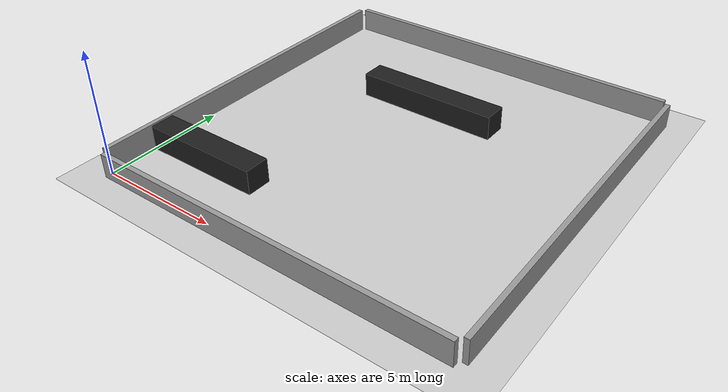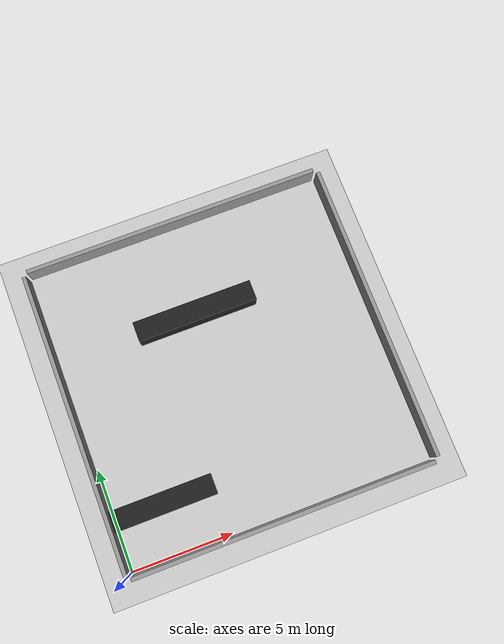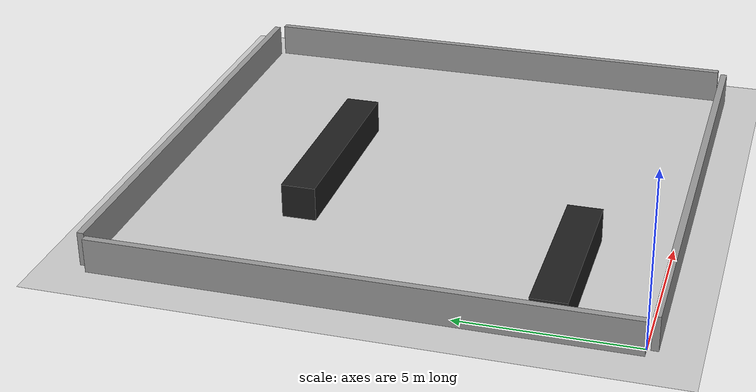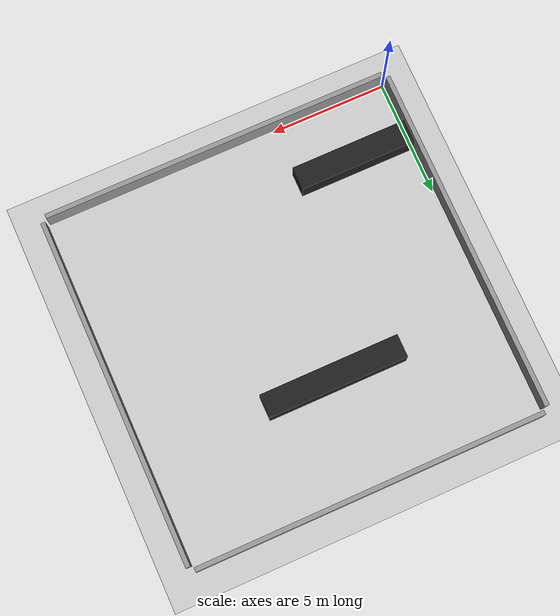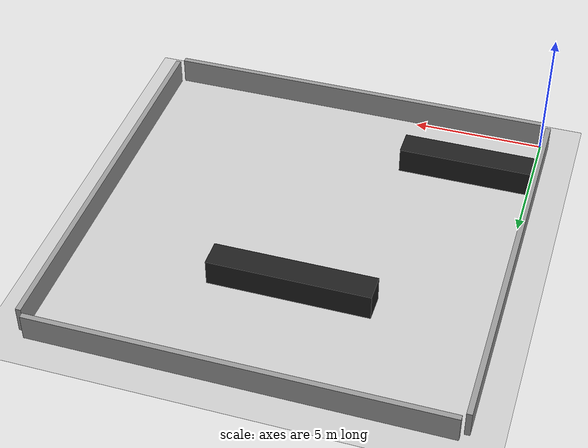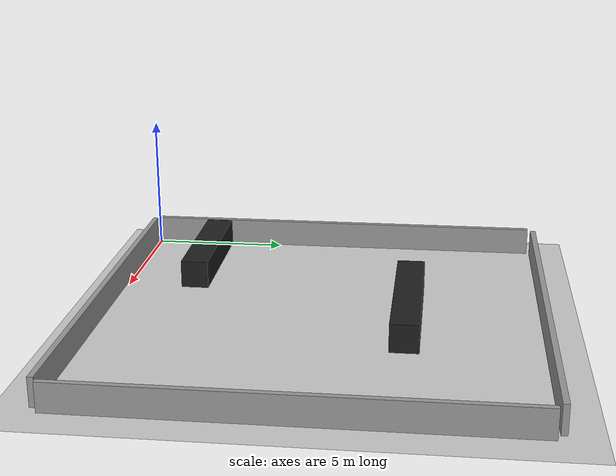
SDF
<sdf version="1.6">
 <world name="default">
  <light name="sun" type="directional">
   <pose>0 0 10 0 -0 0</pose>
   <diffuse>0.8 0.8 0.8 1</diffuse>
   <specular>0.1 0.1 0.1 1</specular>
   <attenuation>
    <range>1000</range>
    <constant>0.9</constant>
    <linear>0.01</linear>
    <quadratic>0.001</quadratic>
   </attenuation>
   <direction>-0.5 0.5 -1</direction>
  </light>
  <model name="ground_plane">
   <static>1</static>
   <link name="link">
    <collision name="collision">
     <geometry><plane><normal>0 0 1</normal><size>100 100</size></plane></geometry>
     <surface><friction><ode><mu>100</mu><mu2>50</mu2></ode></friction></surface>
    </collision>
    <visual name="visual">
     <cast_shadows>0</cast_shadows>
     <geometry><plane><normal>0 0 1</normal><size>100 100</size></plane></geometry>
     <material>
      <script><uri>file://media/materials/scripts/gazebo.material</uri><name>Gazebo/Grey</name></script>
     </material>
    </visual>
   </link>
  </model>
  <gravity>0 0 -9.8</gravity>
  <magnetic_field>6e-06 2.3e-05 -4.2e-05</magnetic_field>
  <atmosphere type="adiabatic"/>
  <physics name="default_physics" default="0" type="ode">
   <max_step_size>0.001</max_step_size>
   <real_time_factor>1</real_time_factor>
   <real_time_update_rate>1000</real_time_update_rate>
  </physics>
  <scene><ambient>0.4 0.4 0.4 1</ambient><background>0.7 0.7 0.7 1</background><shadows>1</shadows></scene>
  <spherical_coordinates>
   <surface_model>EARTH_WGS84</surface_model>
   <latitude_deg>0</latitude_deg>
   <longitude_deg>0</longitude_deg>
   <elevation>0</elevation>
   <heading_deg>0</heading_deg>
  </spherical_coordinates>
  <model name="obstacle1">
   <link name="link_0">
    <inertial>
     <mass>1</mass>
     <inertia>
      <ixx>0.166667</ixx>
      <ixy>0</ixy>
      <ixz>0</ixz>
      <iyy>0.166667</iyy>
      <iyz>0</iyz>
      <izz>0.166667</izz>
     </inertia>
    </inertial>
    <visual name="visual">
     <geometry><box><size>5 1 1</size></box></geometry>
     <material>
      <lighting>1</lighting>
      <script><uri>file://media/materials/scripts/gazebo.material</uri><name>Gazebo/Black</name></script>
      <ambient>0 0 0 1</ambient>
      <diffuse>0 0 0 1</diffuse>
      <specular>0.01 0.01 0.01 1</specular>
      <emissive>0 0 0 1</emissive>
      <shader type="vertex"><normal_map>__default__</normal_map></shader>
     </material>
    </visual>
    <collision name="collision">
     <geometry><box><size>5 1 1</size></box></geometry>
     <surface>
      <friction>
       <ode><mu>1</mu><mu2>1</mu2><fdir1>0 0 0</fdir1><slip1>0</slip1><slip2>0</slip2></ode>
       <torsional>
        <coefficient>1</coefficient>
        <patch_radius>0</patch_radius>
        <surface_radius>0</surface_radius>
        <use_patch_radius>1</use_patch_radius>
        <ode><slip>0</slip></ode>
       </torsional>
      </friction>
      <bounce><restitution_coefficient>0</restitution_coefficient><threshold>1e+06</threshold></bounce>
      <contact>
       <collide_without_contact>0</collide_without_contact>
       <collide_without_contact_bitmask>1</collide_without_contact_bitmask>
       <collide_bitmask>1</collide_bitmask>
       <ode>
        <soft_cfm>0</soft_cfm>
        <soft_erp>0.2</soft_erp>
        <kp>1e+13</kp>
        <kd>1</kd>
        <max_vel>0.01</max_vel>
        <min_depth>0</min_depth>
       </ode>
       <bullet>
        <split_impulse>1</split_impulse>
        <split_impulse_penetration_threshold>-0.01</split_impulse_penetration_threshold>
        <soft_cfm>0</soft_cfm>
        <soft_erp>0.2</soft_erp>
        <kp>1e+13</kp>
        <kd>1</kd>
       </bullet>
      </contact>
     </surface>
    </collision>
   </link>
   <static>0</static>
   <pose>2.5 2.5 0.5 0 -0 0</pose>
  </model>
  <model name="obstacle2">
   <link name="link_0">
    <inertial>
     <mass>1</mass>
     <inertia>
      <ixx>0.166667</ixx>
      <ixy>0</ixy>
      <ixz>0</ixz>
      <iyy>0.166667</iyy>
      <iyz>0</iyz>
      <izz>0.166667</izz>
     </inertia>
    </inertial>
    <visual name="visual">
     <geometry><box><size>6 1 1</size></box></geometry>
     <material>
      <lighting>1</lighting>
      <script><uri>file://media/materials/scripts/gazebo.material</uri><name>Gazebo/Black</name></script>
      <ambient>0 0 0 1</ambient>
      <diffuse>0 0 0 1</diffuse>
      <specular>0.01 0.01 0.01 1</specular>
      <emissive>0 0 0 1</emissive>
      <shader type="vertex"><normal_map>__default__</normal_map></shader>
     </material>
    </visual>
    <collision name="collision">
     <geometry><box><size>6 1 1</size></box></geometry>
     <surface>
      <friction>
       <ode><mu>1</mu><mu2>1</mu2><fdir1>0 0 0</fdir1><slip1>0</slip1><slip2>0</slip2></ode>
       <torsional>
        <coefficient>1</coefficient>
        <patch_radius>0</patch_radius>
        <surface_radius>0</surface_radius>
        <use_patch_radius>1</use_patch_radius>
        <ode><slip>0</slip></ode>
       </torsional>
      </friction>
      <bounce><restitution_coefficient>0</restitution_coefficient><threshold>1e+06</threshold></bounce>
      <contact>
       <collide_without_contact>0</collide_without_contact>
       <collide_without_contact_bitmask>1</collide_without_contact_bitmask>
       <collide_bitmask>1</collide_bitmask>
       <ode>
        <soft_cfm>0</soft_cfm>
        <soft_erp>0.2</soft_erp>
        <kp>1e+13</kp>
        <kd>1</kd>
        <max_vel>0.01</max_vel>
        <min_depth>0</min_depth>
       </ode>
       <bullet>
        <split_impulse>1</split_impulse>
        <split_impulse_penetration_threshold>-0.01</split_impulse_penetration_threshold>
        <soft_cfm>0</soft_cfm>
        <soft_erp>0.2</soft_erp>
        <kp>1e+13</kp>
        <kd>1</kd>
       </bullet>
      </contact>
     </surface>
    </collision>
   </link>
   <static>0</static>
   <pose>7.0 10.5 0.5 0 -0 0</pose>
  </model>
  <model name="boundry1">
   <static>1</static>
   <link name="link">
    <pose>0 0 0.5 0 -0 0</pose>
    <collision name="collision"><geometry><box><size>15.0 0.2 1.0</size></box></geometry></collision>
    <visual name="visual">
     <cast_shadows>0</cast_shadows>
     <geometry><box><size>15.0 0.2 1.0</size></box></geometry>
     <material>
      <script>
       <uri>model://grey_wall/materials/scripts</uri>
       <uri>model://grey_wall/materials/textures</uri>
       <name>vrc/grey_wall</name>
      </script>
     </material>
    </visual>
   </link>
   <pose>7.5 -0.2 0 0 -0 0</pose>
  </model>
  <model name="boundry2">
   <static>1</static>
   <link name="link">
    <pose>0 0 0.5 0 -0 0</pose>
    <collision name="collision"><geometry><box><size>0.2 15.0 1.0</size></box></geometry></collision>
    <visual name="visual">
     <cast_shadows>0</cast_shadows>
     <geometry><box><size>0.2 15.0 1.0</size></box></geometry>
     <material>
      <script>
       <uri>model://grey_wall/materials/scripts</uri>
       <uri>model://grey_wall/materials/textures</uri>
       <name>vrc/grey_wall</name>
      </script>
     </material>
    </visual>
   </link>
   <pose>-0.2 7.5 0 0 -0 0</pose>
  </model>
  <model name="boundry3">
   <static>1</static>
   <link name="link">
    <pose>0 0 0.5 0 -0 0</pose>
    <collision name="collision"><geometry><box><size>15.0 0.2 1.0</size></box></geometry></collision>
    <visual name="visual">
     <cast_shadows>0</cast_shadows>
     <geometry><box><size>15.0 0.2 1.0</size></box></geometry>
     <material>
      <script>
       <uri>model://grey_wall/materials/scripts</uri>
       <uri>model://grey_wall/materials/textures</uri>
       <name>vrc/grey_wall</name>
      </script>
     </material>
    </visual>
   </link>
   <pose>7.5 15.2 0 0 -0 0</pose>
  </model>
  <model name="boundry4">
   <static>1</static>
   <link name="link">
    <pose>0 0 0.5 0 -0 0</pose>
    <collision name="collision"><geometry><box><size>0.2 15.0 1.0</size></box></geometry></collision>
    <visual name="visual">
     <cast_shadows>0</cast_shadows>
     <geometry><box><size>0.2 15.0 1.0</size></box></geometry>
     <material>
      <script>
       <uri>model://grey_wall/materials/scripts</uri>
       <uri>model://grey_wall/materials/textures</uri>
       <name>vrc/grey_wall</name>
      </script>
     </material>
    </visual>
   </link>
   <pose>15.2 7.5 0 0 -0 0</pose>
  </model>
 </world>
</sdf>
